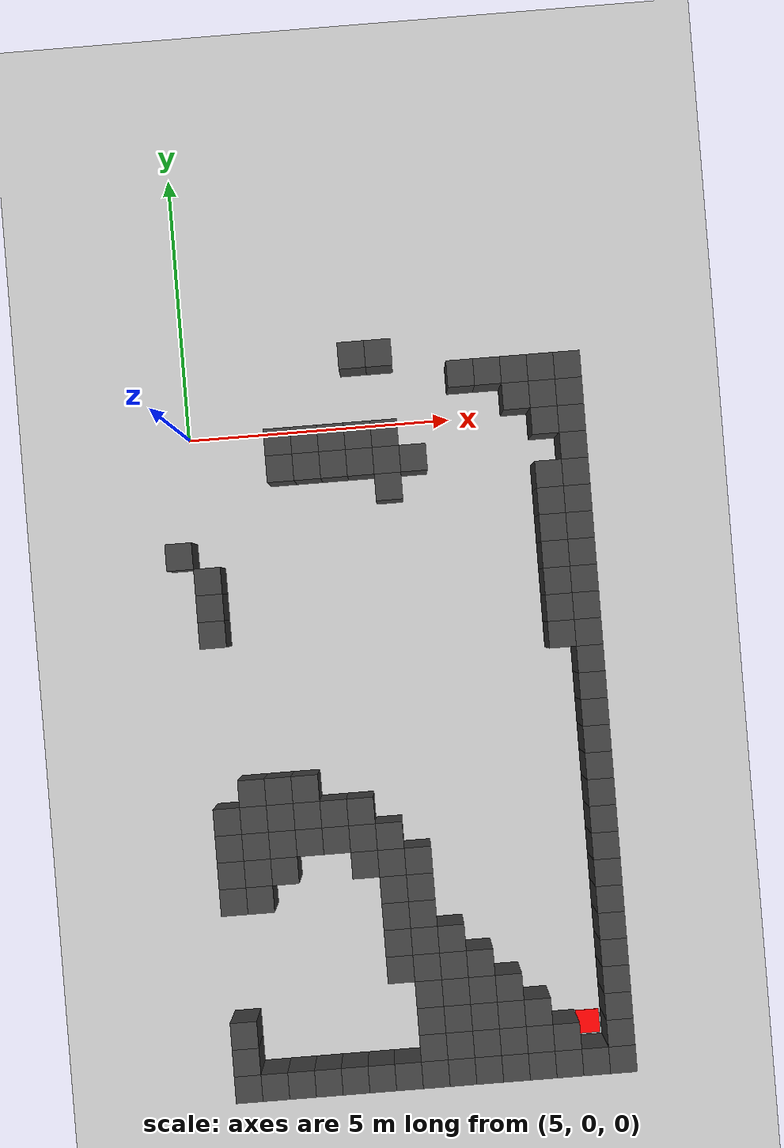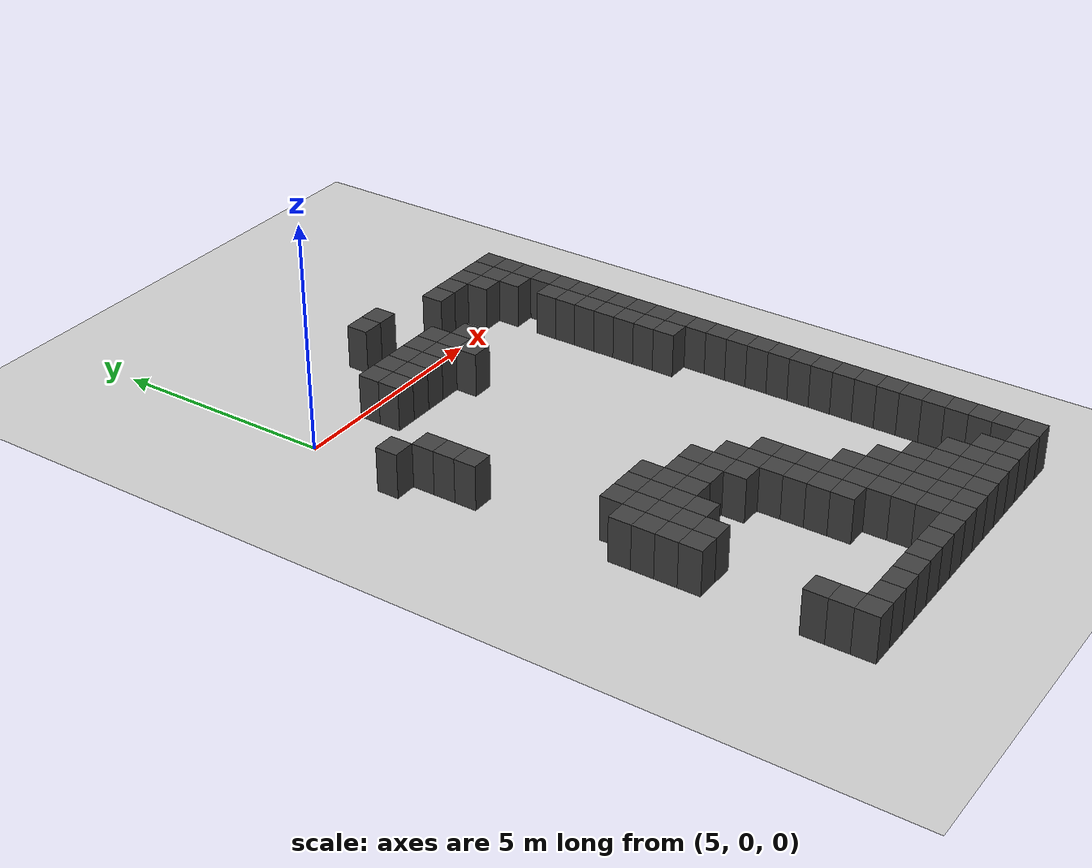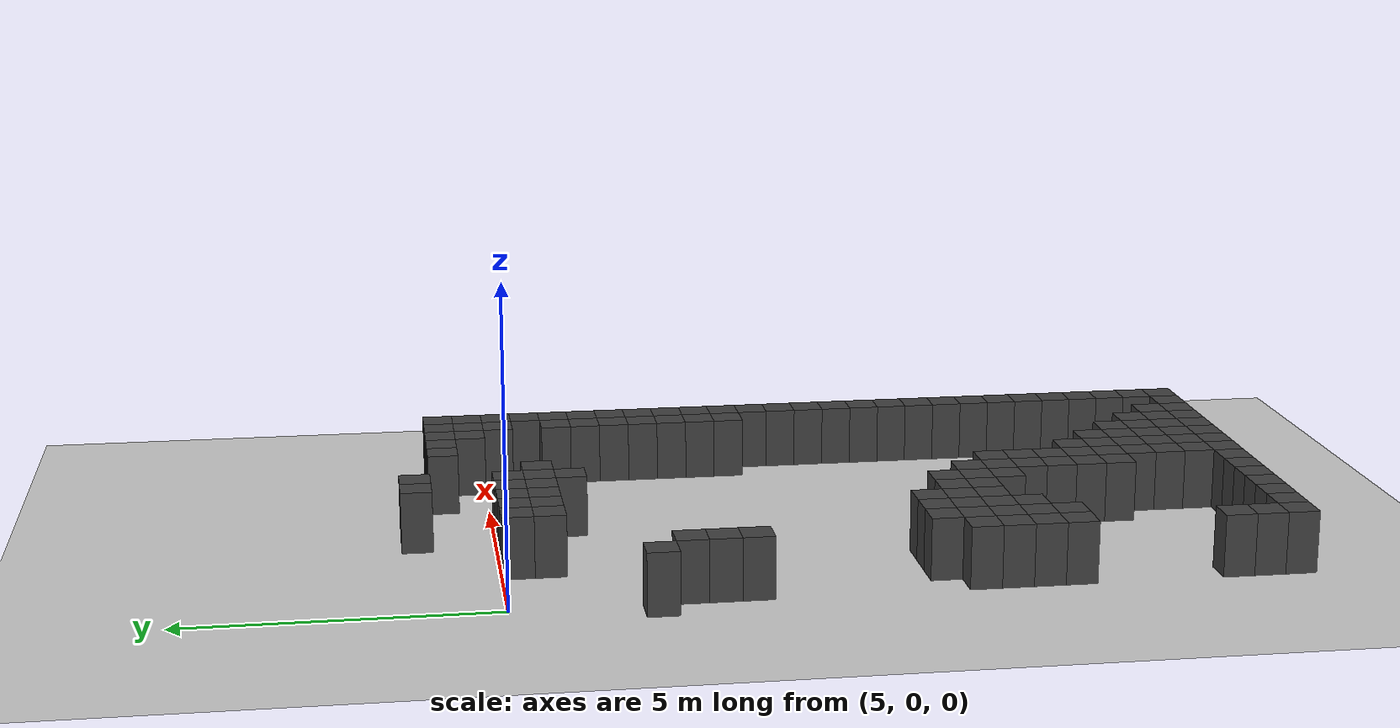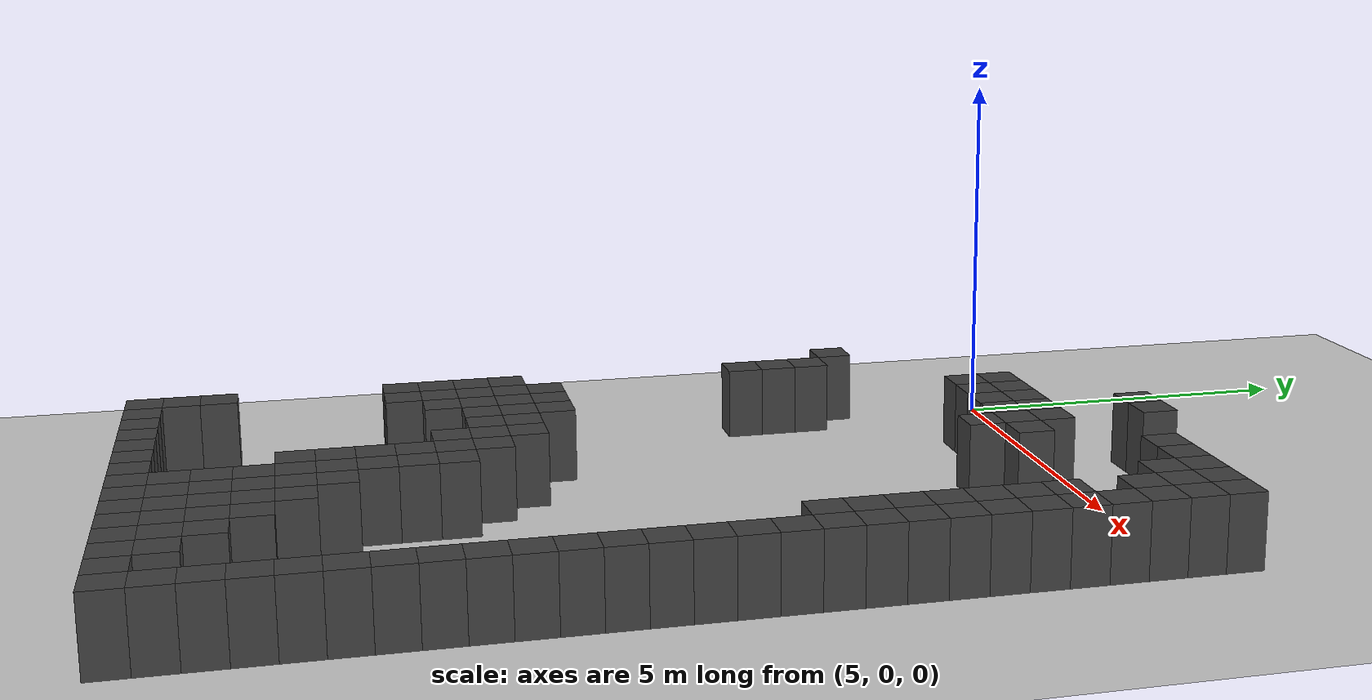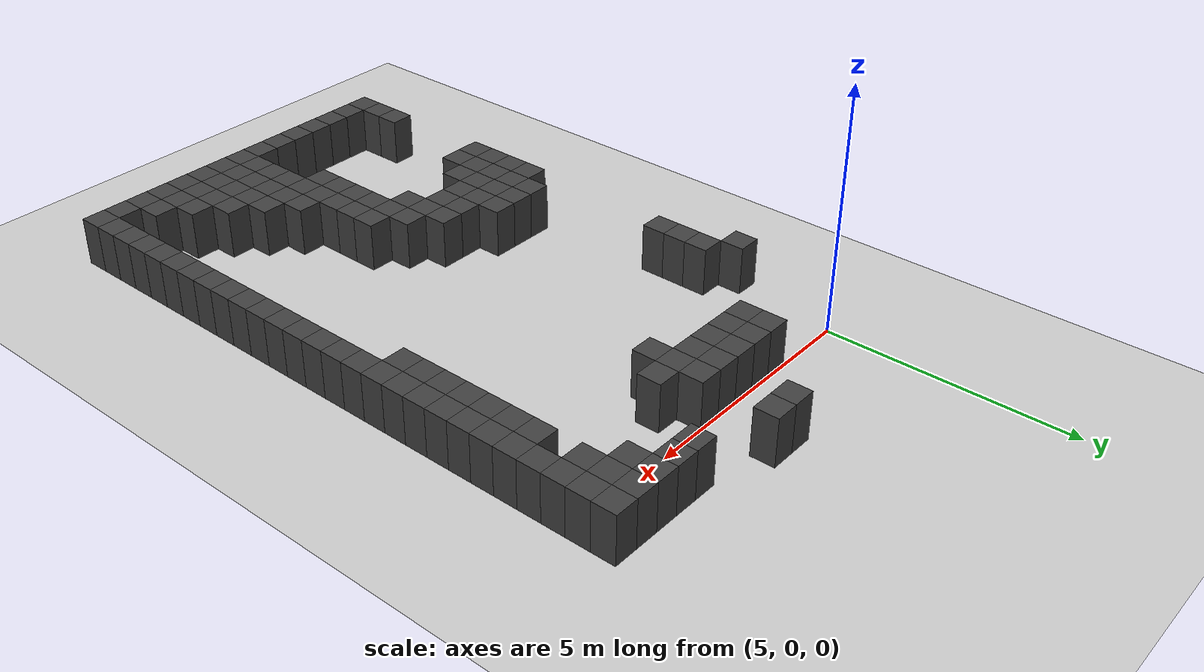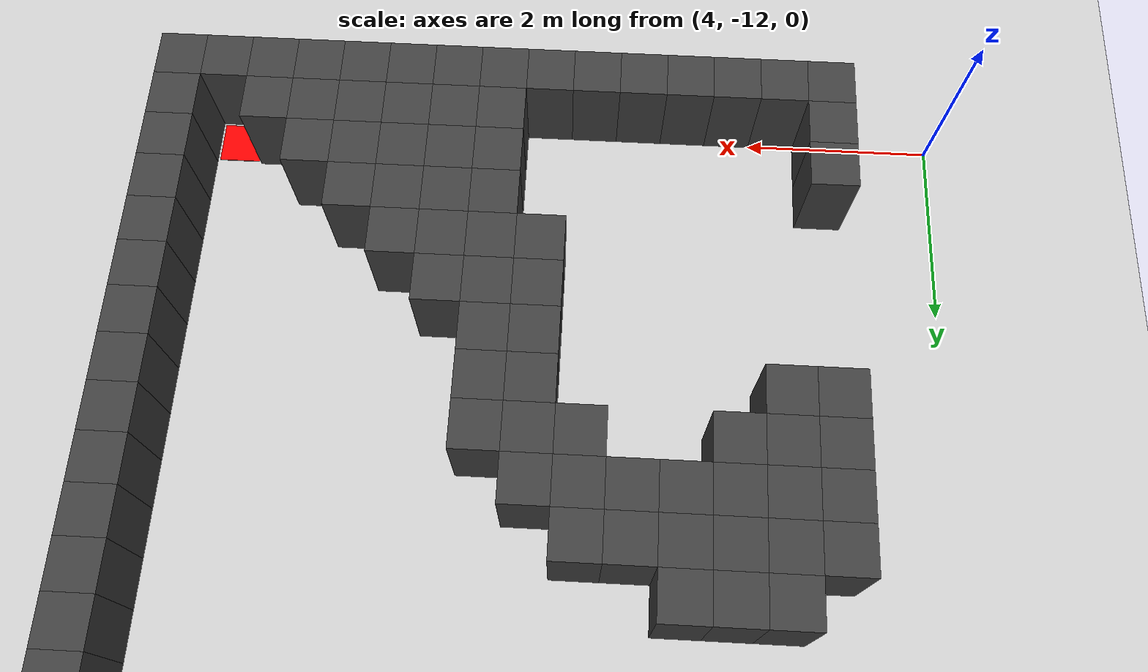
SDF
<sdf version="1.7">
 <world name="map_8658">
  <model name="ground_plane">
   <static>true</static>
   <link name="link">
    <collision name="collision">
     <geometry><plane><normal>0 0 1</normal><size>200 200</size></plane></geometry>
    </collision>
    <visual name="visual">
     <geometry><plane><normal>0 0 1</normal><size>200 200</size></plane></geometry>
     <material><ambient>0.8 0.8 0.8 1</ambient><diffuse>0.8 0.8 0.8 1</diffuse></material>
    </visual>
   </link>
  </model>
  <model name="maze_environment">
   <static>true</static>
   <link name="wall_459">
    <pose>8.250 1.250 0.500 0 0 0</pose>
    <collision name="col"><geometry><box><size>0.5 0.5 1.0</size></box></geometry></collision>
    <visual name="vis">
     <geometry><box><size>0.5 0.5 1.0</size></box></geometry>
     <material><ambient>0.15 0.15 0.15 1</ambient><diffuse>0.25 0.25 0.25 1</diffuse></material>
    </visual>
   </link>
   <link name="wall_460">
    <pose>8.750 1.250 0.500 0 0 0</pose>
    <collision name="col"><geometry><box><size>0.5 0.5 1.0</size></box></geometry></collision>
    <visual name="vis">
     <geometry><box><size>0.5 0.5 1.0</size></box></geometry>
     <material><ambient>0.15 0.15 0.15 1</ambient><diffuse>0.25 0.25 0.25 1</diffuse></material>
    </visual>
   </link>
   <link name="wall_477">
    <pose>10.250 0.750 0.500 0 0 0</pose>
    <collision name="col"><geometry><box><size>0.5 0.5 1.0</size></box></geometry></collision>
    <visual name="vis">
     <geometry><box><size>0.5 0.5 1.0</size></box></geometry>
     <material><ambient>0.15 0.15 0.15 1</ambient><diffuse>0.25 0.25 0.25 1</diffuse></material>
    </visual>
   </link>
   <link name="wall_478">
    <pose>10.750 0.750 0.500 0 0 0</pose>
    <collision name="col"><geometry><box><size>0.5 0.5 1.0</size></box></geometry></collision>
    <visual name="vis">
     <geometry><box><size>0.5 0.5 1.0</size></box></geometry>
     <material><ambient>0.15 0.15 0.15 1</ambient><diffuse>0.25 0.25 0.25 1</diffuse></material>
    </visual>
   </link>
   <link name="wall_479">
    <pose>11.250 0.750 0.500 0 0 0</pose>
    <collision name="col"><geometry><box><size>0.5 0.5 1.0</size></box></geometry></collision>
    <visual name="vis">
     <geometry><box><size>0.5 0.5 1.0</size></box></geometry>
     <material><ambient>0.15 0.15 0.15 1</ambient><diffuse>0.25 0.25 0.25 1</diffuse></material>
    </visual>
   </link>
   <link name="wall_480">
    <pose>11.750 0.750 0.500 0 0 0</pose>
    <collision name="col"><geometry><box><size>0.5 0.5 1.0</size></box></geometry></collision>
    <visual name="vis">
     <geometry><box><size>0.5 0.5 1.0</size></box></geometry>
     <material><ambient>0.15 0.15 0.15 1</ambient><diffuse>0.25 0.25 0.25 1</diffuse></material>
    </visual>
   </link>
   <link name="wall_481">
    <pose>12.250 0.750 0.500 0 0 0</pose>
    <collision name="col"><geometry><box><size>0.5 0.5 1.0</size></box></geometry></collision>
    <visual name="vis">
     <geometry><box><size>0.5 0.5 1.0</size></box></geometry>
     <material><ambient>0.15 0.15 0.15 1</ambient><diffuse>0.25 0.25 0.25 1</diffuse></material>
    </visual>
   </link>
   <link name="wall_495">
    <pose>11.250 0.250 0.500 0 0 0</pose>
    <collision name="col"><geometry><box><size>0.5 0.5 1.0</size></box></geometry></collision>
    <visual name="vis">
     <geometry><box><size>0.5 0.5 1.0</size></box></geometry>
     <material><ambient>0.15 0.15 0.15 1</ambient><diffuse>0.25 0.25 0.25 1</diffuse></material>
    </visual>
   </link>
   <link name="wall_496">
    <pose>11.750 0.250 0.500 0 0 0</pose>
    <collision name="col"><geometry><box><size>0.5 0.5 1.0</size></box></geometry></collision>
    <visual name="vis">
     <geometry><box><size>0.5 0.5 1.0</size></box></geometry>
     <material><ambient>0.15 0.15 0.15 1</ambient><diffuse>0.25 0.25 0.25 1</diffuse></material>
    </visual>
   </link>
   <link name="wall_497">
    <pose>12.250 0.250 0.500 0 0 0</pose>
    <collision name="col"><geometry><box><size>0.5 0.5 1.0</size></box></geometry></collision>
    <visual name="vis">
     <geometry><box><size>0.5 0.5 1.0</size></box></geometry>
     <material><ambient>0.15 0.15 0.15 1</ambient><diffuse>0.25 0.25 0.25 1</diffuse></material>
    </visual>
   </link>
   <link name="wall_513">
    <pose>6.750 -0.250 0.500 0 0 0</pose>
    <collision name="col"><geometry><box><size>0.5 0.5 1.0</size></box></geometry></collision>
    <visual name="vis">
     <geometry><box><size>0.5 0.5 1.0</size></box></geometry>
     <material><ambient>0.15 0.15 0.15 1</ambient><diffuse>0.25 0.25 0.25 1</diffuse></material>
    </visual>
   </link>
   <link name="wall_514">
    <pose>7.250 -0.250 0.500 0 0 0</pose>
    <collision name="col"><geometry><box><size>0.5 0.5 1.0</size></box></geometry></collision>
    <visual name="vis">
     <geometry><box><size>0.5 0.5 1.0</size></box></geometry>
     <material><ambient>0.15 0.15 0.15 1</ambient><diffuse>0.25 0.25 0.25 1</diffuse></material>
    </visual>
   </link>
   <link name="wall_515">
    <pose>7.750 -0.250 0.500 0 0 0</pose>
    <collision name="col"><geometry><box><size>0.5 0.5 1.0</size></box></geometry></collision>
    <visual name="vis">
     <geometry><box><size>0.5 0.5 1.0</size></box></geometry>
     <material><ambient>0.15 0.15 0.15 1</ambient><diffuse>0.25 0.25 0.25 1</diffuse></material>
    </visual>
   </link>
   <link name="wall_516">
    <pose>8.250 -0.250 0.500 0 0 0</pose>
    <collision name="col"><geometry><box><size>0.5 0.5 1.0</size></box></geometry></collision>
    <visual name="vis">
     <geometry><box><size>0.5 0.5 1.0</size></box></geometry>
     <material><ambient>0.15 0.15 0.15 1</ambient><diffuse>0.25 0.25 0.25 1</diffuse></material>
    </visual>
   </link>
   <link name="wall_517">
    <pose>8.750 -0.250 0.500 0 0 0</pose>
    <collision name="col"><geometry><box><size>0.5 0.5 1.0</size></box></geometry></collision>
    <visual name="vis">
     <geometry><box><size>0.5 0.5 1.0</size></box></geometry>
     <material><ambient>0.15 0.15 0.15 1</ambient><diffuse>0.25 0.25 0.25 1</diffuse></material>
    </visual>
   </link>
   <link name="wall_518">
    <pose>11.750 -0.250 0.500 0 0 0</pose>
    <collision name="col"><geometry><box><size>0.5 0.5 1.0</size></box></geometry></collision>
    <visual name="vis">
     <geometry><box><size>0.5 0.5 1.0</size></box></geometry>
     <material><ambient>0.15 0.15 0.15 1</ambient><diffuse>0.25 0.25 0.25 1</diffuse></material>
    </visual>
   </link>
   <link name="wall_519">
    <pose>12.250 -0.250 0.500 0 0 0</pose>
    <collision name="col"><geometry><box><size>0.5 0.5 1.0</size></box></geometry></collision>
    <visual name="vis">
     <geometry><box><size>0.5 0.5 1.0</size></box></geometry>
     <material><ambient>0.15 0.15 0.15 1</ambient><diffuse>0.25 0.25 0.25 1</diffuse></material>
    </visual>
   </link>
   <link name="wall_534">
    <pose>6.750 -0.750 0.500 0 0 0</pose>
    <collision name="col"><geometry><box><size>0.5 0.5 1.0</size></box></geometry></collision>
    <visual name="vis">
     <geometry><box><size>0.5 0.5 1.0</size></box></geometry>
     <material><ambient>0.15 0.15 0.15 1</ambient><diffuse>0.25 0.25 0.25 1</diffuse></material>
    </visual>
   </link>
   <link name="wall_535">
    <pose>7.250 -0.750 0.500 0 0 0</pose>
    <collision name="col"><geometry><box><size>0.5 0.5 1.0</size></box></geometry></collision>
    <visual name="vis">
     <geometry><box><size>0.5 0.5 1.0</size></box></geometry>
     <material><ambient>0.15 0.15 0.15 1</ambient><diffuse>0.25 0.25 0.25 1</diffuse></material>
    </visual>
   </link>
   <link name="wall_536">
    <pose>7.750 -0.750 0.500 0 0 0</pose>
    <collision name="col"><geometry><box><size>0.5 0.5 1.0</size></box></geometry></collision>
    <visual name="vis">
     <geometry><box><size>0.5 0.5 1.0</size></box></geometry>
     <material><ambient>0.15 0.15 0.15 1</ambient><diffuse>0.25 0.25 0.25 1</diffuse></material>
    </visual>
   </link>
   <link name="wall_537">
    <pose>8.250 -0.750 0.500 0 0 0</pose>
    <collision name="col"><geometry><box><size>0.5 0.5 1.0</size></box></geometry></collision>
    <visual name="vis">
     <geometry><box><size>0.5 0.5 1.0</size></box></geometry>
     <material><ambient>0.15 0.15 0.15 1</ambient><diffuse>0.25 0.25 0.25 1</diffuse></material>
    </visual>
   </link>
   <link name="wall_538">
    <pose>8.750 -0.750 0.500 0 0 0</pose>
    <collision name="col"><geometry><box><size>0.5 0.5 1.0</size></box></geometry></collision>
    <visual name="vis">
     <geometry><box><size>0.5 0.5 1.0</size></box></geometry>
     <material><ambient>0.15 0.15 0.15 1</ambient><diffuse>0.25 0.25 0.25 1</diffuse></material>
    </visual>
   </link>
   <link name="wall_539">
    <pose>9.250 -0.750 0.500 0 0 0</pose>
    <collision name="col"><geometry><box><size>0.5 0.5 1.0</size></box></geometry></collision>
    <visual name="vis">
     <geometry><box><size>0.5 0.5 1.0</size></box></geometry>
     <material><ambient>0.15 0.15 0.15 1</ambient><diffuse>0.25 0.25 0.25 1</diffuse></material>
    </visual>
   </link>
   <link name="wall_540">
    <pose>12.250 -0.750 0.500 0 0 0</pose>
    <collision name="col"><geometry><box><size>0.5 0.5 1.0</size></box></geometry></collision>
    <visual name="vis">
     <geometry><box><size>0.5 0.5 1.0</size></box></geometry>
     <material><ambient>0.15 0.15 0.15 1</ambient><diffuse>0.25 0.25 0.25 1</diffuse></material>
    </visual>
   </link>
   <link name="wall_554">
    <pose>8.750 -1.250 0.500 0 0 0</pose>
    <collision name="col"><geometry><box><size>0.5 0.5 1.0</size></box></geometry></collision>
    <visual name="vis">
     <geometry><box><size>0.5 0.5 1.0</size></box></geometry>
     <material><ambient>0.15 0.15 0.15 1</ambient><diffuse>0.25 0.25 0.25 1</diffuse></material>
    </visual>
   </link>
   <link name="wall_555">
    <pose>11.750 -1.250 0.500 0 0 0</pose>
    <collision name="col"><geometry><box><size>0.5 0.5 1.0</size></box></geometry></collision>
    <visual name="vis">
     <geometry><box><size>0.5 0.5 1.0</size></box></geometry>
     <material><ambient>0.15 0.15 0.15 1</ambient><diffuse>0.25 0.25 0.25 1</diffuse></material>
    </visual>
   </link>
   <link name="wall_556">
    <pose>12.250 -1.250 0.500 0 0 0</pose>
    <collision name="col"><geometry><box><size>0.5 0.5 1.0</size></box></geometry></collision>
    <visual name="vis">
     <geometry><box><size>0.5 0.5 1.0</size></box></geometry>
     <material><ambient>0.15 0.15 0.15 1</ambient><diffuse>0.25 0.25 0.25 1</diffuse></material>
    </visual>
   </link>
   <link name="wall_571">
    <pose>11.750 -1.750 0.500 0 0 0</pose>
    <collision name="col"><geometry><box><size>0.5 0.5 1.0</size></box></geometry></collision>
    <visual name="vis">
     <geometry><box><size>0.5 0.5 1.0</size></box></geometry>
     <material><ambient>0.15 0.15 0.15 1</ambient><diffuse>0.25 0.25 0.25 1</diffuse></material>
    </visual>
   </link>
   <link name="wall_572">
    <pose>12.250 -1.750 0.500 0 0 0</pose>
    <collision name="col"><geometry><box><size>0.5 0.5 1.0</size></box></geometry></collision>
    <visual name="vis">
     <geometry><box><size>0.5 0.5 1.0</size></box></geometry>
     <material><ambient>0.15 0.15 0.15 1</ambient><diffuse>0.25 0.25 0.25 1</diffuse></material>
    </visual>
   </link>
   <link name="wall_591">
    <pose>4.750 -2.250 0.500 0 0 0</pose>
    <collision name="col"><geometry><box><size>0.5 0.5 1.0</size></box></geometry></collision>
    <visual name="vis">
     <geometry><box><size>0.5 0.5 1.0</size></box></geometry>
     <material><ambient>0.15 0.15 0.15 1</ambient><diffuse>0.25 0.25 0.25 1</diffuse></material>
    </visual>
   </link>
   <link name="wall_592">
    <pose>11.750 -2.250 0.500 0 0 0</pose>
    <collision name="col"><geometry><box><size>0.5 0.5 1.0</size></box></geometry></collision>
    <visual name="vis">
     <geometry><box><size>0.5 0.5 1.0</size></box></geometry>
     <material><ambient>0.15 0.15 0.15 1</ambient><diffuse>0.25 0.25 0.25 1</diffuse></material>
    </visual>
   </link>
   <link name="wall_593">
    <pose>12.250 -2.250 0.500 0 0 0</pose>
    <collision name="col"><geometry><box><size>0.5 0.5 1.0</size></box></geometry></collision>
    <visual name="vis">
     <geometry><box><size>0.5 0.5 1.0</size></box></geometry>
     <material><ambient>0.15 0.15 0.15 1</ambient><diffuse>0.25 0.25 0.25 1</diffuse></material>
    </visual>
   </link>
   <link name="wall_610">
    <pose>5.250 -2.750 0.500 0 0 0</pose>
    <collision name="col"><geometry><box><size>0.5 0.5 1.0</size></box></geometry></collision>
    <visual name="vis">
     <geometry><box><size>0.5 0.5 1.0</size></box></geometry>
     <material><ambient>0.15 0.15 0.15 1</ambient><diffuse>0.25 0.25 0.25 1</diffuse></material>
    </visual>
   </link>
   <link name="wall_611">
    <pose>11.750 -2.750 0.500 0 0 0</pose>
    <collision name="col"><geometry><box><size>0.5 0.5 1.0</size></box></geometry></collision>
    <visual name="vis">
     <geometry><box><size>0.5 0.5 1.0</size></box></geometry>
     <material><ambient>0.15 0.15 0.15 1</ambient><diffuse>0.25 0.25 0.25 1</diffuse></material>
    </visual>
   </link>
   <link name="wall_612">
    <pose>12.250 -2.750 0.500 0 0 0</pose>
    <collision name="col"><geometry><box><size>0.5 0.5 1.0</size></box></geometry></collision>
    <visual name="vis">
     <geometry><box><size>0.5 0.5 1.0</size></box></geometry>
     <material><ambient>0.15 0.15 0.15 1</ambient><diffuse>0.25 0.25 0.25 1</diffuse></material>
    </visual>
   </link>
   <link name="wall_628">
    <pose>5.250 -3.250 0.500 0 0 0</pose>
    <collision name="col"><geometry><box><size>0.5 0.5 1.0</size></box></geometry></collision>
    <visual name="vis">
     <geometry><box><size>0.5 0.5 1.0</size></box></geometry>
     <material><ambient>0.15 0.15 0.15 1</ambient><diffuse>0.25 0.25 0.25 1</diffuse></material>
    </visual>
   </link>
   <link name="wall_629">
    <pose>11.750 -3.250 0.500 0 0 0</pose>
    <collision name="col"><geometry><box><size>0.5 0.5 1.0</size></box></geometry></collision>
    <visual name="vis">
     <geometry><box><size>0.5 0.5 1.0</size></box></geometry>
     <material><ambient>0.15 0.15 0.15 1</ambient><diffuse>0.25 0.25 0.25 1</diffuse></material>
    </visual>
   </link>
   <link name="wall_630">
    <pose>12.250 -3.250 0.500 0 0 0</pose>
    <collision name="col"><geometry><box><size>0.5 0.5 1.0</size></box></geometry></collision>
    <visual name="vis">
     <geometry><box><size>0.5 0.5 1.0</size></box></geometry>
     <material><ambient>0.15 0.15 0.15 1</ambient><diffuse>0.25 0.25 0.25 1</diffuse></material>
    </visual>
   </link>
   <link name="wall_646">
    <pose>5.250 -3.750 0.500 0 0 0</pose>
    <collision name="col"><geometry><box><size>0.5 0.5 1.0</size></box></geometry></collision>
    <visual name="vis">
     <geometry><box><size>0.5 0.5 1.0</size></box></geometry>
     <material><ambient>0.15 0.15 0.15 1</ambient><diffuse>0.25 0.25 0.25 1</diffuse></material>
    </visual>
   </link>
   <link name="wall_647">
    <pose>11.750 -3.750 0.500 0 0 0</pose>
    <collision name="col"><geometry><box><size>0.5 0.5 1.0</size></box></geometry></collision>
    <visual name="vis">
     <geometry><box><size>0.5 0.5 1.0</size></box></geometry>
     <material><ambient>0.15 0.15 0.15 1</ambient><diffuse>0.25 0.25 0.25 1</diffuse></material>
    </visual>
   </link>
   <link name="wall_648">
    <pose>12.250 -3.750 0.500 0 0 0</pose>
    <collision name="col"><geometry><box><size>0.5 0.5 1.0</size></box></geometry></collision>
    <visual name="vis">
     <geometry><box><size>0.5 0.5 1.0</size></box></geometry>
     <material><ambient>0.15 0.15 0.15 1</ambient><diffuse>0.25 0.25 0.25 1</diffuse></material>
    </visual>
   </link>
   <link name="wall_664">
    <pose>11.750 -4.250 0.500 0 0 0</pose>
    <collision name="col"><geometry><box><size>0.5 0.5 1.0</size></box></geometry></collision>
    <visual name="vis">
     <geometry><box><size>0.5 0.5 1.0</size></box></geometry>
     <material><ambient>0.15 0.15 0.15 1</ambient><diffuse>0.25 0.25 0.25 1</diffuse></material>
    </visual>
   </link>
   <link name="wall_665">
    <pose>12.250 -4.250 0.500 0 0 0</pose>
    <collision name="col"><geometry><box><size>0.5 0.5 1.0</size></box></geometry></collision>
    <visual name="vis">
     <geometry><box><size>0.5 0.5 1.0</size></box></geometry>
     <material><ambient>0.15 0.15 0.15 1</ambient><diffuse>0.25 0.25 0.25 1</diffuse></material>
    </visual>
   </link>
   <link name="wall_675">
    <pose>12.250 -4.750 0.500 0 0 0</pose>
    <collision name="col"><geometry><box><size>0.5 0.5 1.0</size></box></geometry></collision>
    <visual name="vis">
     <geometry><box><size>0.5 0.5 1.0</size></box></geometry>
     <material><ambient>0.15 0.15 0.15 1</ambient><diffuse>0.25 0.25 0.25 1</diffuse></material>
    </visual>
   </link>
   <link name="wall_682">
    <pose>12.250 -5.250 0.500 0 0 0</pose>
    <collision name="col"><geometry><box><size>0.5 0.5 1.0</size></box></geometry></collision>
    <visual name="vis">
     <geometry><box><size>0.5 0.5 1.0</size></box></geometry>
     <material><ambient>0.15 0.15 0.15 1</ambient><diffuse>0.25 0.25 0.25 1</diffuse></material>
    </visual>
   </link>
   <link name="wall_688">
    <pose>12.250 -5.750 0.500 0 0 0</pose>
    <collision name="col"><geometry><box><size>0.5 0.5 1.0</size></box></geometry></collision>
    <visual name="vis">
     <geometry><box><size>0.5 0.5 1.0</size></box></geometry>
     <material><ambient>0.15 0.15 0.15 1</ambient><diffuse>0.25 0.25 0.25 1</diffuse></material>
    </visual>
   </link>
   <link name="wall_693">
    <pose>12.250 -6.250 0.500 0 0 0</pose>
    <collision name="col"><geometry><box><size>0.5 0.5 1.0</size></box></geometry></collision>
    <visual name="vis">
     <geometry><box><size>0.5 0.5 1.0</size></box></geometry>
     <material><ambient>0.15 0.15 0.15 1</ambient><diffuse>0.25 0.25 0.25 1</diffuse></material>
    </visual>
   </link>
   <link name="wall_695">
    <pose>5.750 -6.750 0.500 0 0 0</pose>
    <collision name="col"><geometry><box><size>0.5 0.5 1.0</size></box></geometry></collision>
    <visual name="vis">
     <geometry><box><size>0.5 0.5 1.0</size></box></geometry>
     <material><ambient>0.15 0.15 0.15 1</ambient><diffuse>0.25 0.25 0.25 1</diffuse></material>
    </visual>
   </link>
   <link name="wall_696">
    <pose>6.250 -6.750 0.500 0 0 0</pose>
    <collision name="col"><geometry><box><size>0.5 0.5 1.0</size></box></geometry></collision>
    <visual name="vis">
     <geometry><box><size>0.5 0.5 1.0</size></box></geometry>
     <material><ambient>0.15 0.15 0.15 1</ambient><diffuse>0.25 0.25 0.25 1</diffuse></material>
    </visual>
   </link>
   <link name="wall_697">
    <pose>6.750 -6.750 0.500 0 0 0</pose>
    <collision name="col"><geometry><box><size>0.5 0.5 1.0</size></box></geometry></collision>
    <visual name="vis">
     <geometry><box><size>0.5 0.5 1.0</size></box></geometry>
     <material><ambient>0.15 0.15 0.15 1</ambient><diffuse>0.25 0.25 0.25 1</diffuse></material>
    </visual>
   </link>
   <link name="wall_698">
    <pose>12.250 -6.750 0.500 0 0 0</pose>
    <collision name="col"><geometry><box><size>0.5 0.5 1.0</size></box></geometry></collision>
    <visual name="vis">
     <geometry><box><size>0.5 0.5 1.0</size></box></geometry>
     <material><ambient>0.15 0.15 0.15 1</ambient><diffuse>0.25 0.25 0.25 1</diffuse></material>
    </visual>
   </link>
   <link name="wall_702">
    <pose>5.250 -7.250 0.500 0 0 0</pose>
    <collision name="col"><geometry><box><size>0.5 0.5 1.0</size></box></geometry></collision>
    <visual name="vis">
     <geometry><box><size>0.5 0.5 1.0</size></box></geometry>
     <material><ambient>0.15 0.15 0.15 1</ambient><diffuse>0.25 0.25 0.25 1</diffuse></material>
    </visual>
   </link>
   <link name="wall_703">
    <pose>5.750 -7.250 0.500 0 0 0</pose>
    <collision name="col"><geometry><box><size>0.5 0.5 1.0</size></box></geometry></collision>
    <visual name="vis">
     <geometry><box><size>0.5 0.5 1.0</size></box></geometry>
     <material><ambient>0.15 0.15 0.15 1</ambient><diffuse>0.25 0.25 0.25 1</diffuse></material>
    </visual>
   </link>
   <link name="wall_704">
    <pose>6.250 -7.250 0.500 0 0 0</pose>
    <collision name="col"><geometry><box><size>0.5 0.5 1.0</size></box></geometry></collision>
    <visual name="vis">
     <geometry><box><size>0.5 0.5 1.0</size></box></geometry>
     <material><ambient>0.15 0.15 0.15 1</ambient><diffuse>0.25 0.25 0.25 1</diffuse></material>
    </visual>
   </link>
   <link name="wall_705">
    <pose>6.750 -7.250 0.500 0 0 0</pose>
    <collision name="col"><geometry><box><size>0.5 0.5 1.0</size></box></geometry></collision>
    <visual name="vis">
     <geometry><box><size>0.5 0.5 1.0</size></box></geometry>
     <material><ambient>0.15 0.15 0.15 1</ambient><diffuse>0.25 0.25 0.25 1</diffuse></material>
    </visual>
   </link>
   <link name="wall_706">
    <pose>7.250 -7.250 0.500 0 0 0</pose>
    <collision name="col"><geometry><box><size>0.5 0.5 1.0</size></box></geometry></collision>
    <visual name="vis">
     <geometry><box><size>0.5 0.5 1.0</size></box></geometry>
     <material><ambient>0.15 0.15 0.15 1</ambient><diffuse>0.25 0.25 0.25 1</diffuse></material>
    </visual>
   </link>
   <link name="wall_707">
    <pose>7.750 -7.250 0.500 0 0 0</pose>
    <collision name="col"><geometry><box><size>0.5 0.5 1.0</size></box></geometry></collision>
    <visual name="vis">
     <geometry><box><size>0.5 0.5 1.0</size></box></geometry>
     <material><ambient>0.15 0.15 0.15 1</ambient><diffuse>0.25 0.25 0.25 1</diffuse></material>
    </visual>
   </link>
   <link name="wall_708">
    <pose>12.250 -7.250 0.500 0 0 0</pose>
    <collision name="col"><geometry><box><size>0.5 0.5 1.0</size></box></geometry></collision>
    <visual name="vis">
     <geometry><box><size>0.5 0.5 1.0</size></box></geometry>
     <material><ambient>0.15 0.15 0.15 1</ambient><diffuse>0.25 0.25 0.25 1</diffuse></material>
    </visual>
   </link>
   <link name="wall_715">
    <pose>5.250 -7.750 0.500 0 0 0</pose>
    <collision name="col"><geometry><box><size>0.5 0.5 1.0</size></box></geometry></collision>
    <visual name="vis">
     <geometry><box><size>0.5 0.5 1.0</size></box></geometry>
     <material><ambient>0.15 0.15 0.15 1</ambient><diffuse>0.25 0.25 0.25 1</diffuse></material>
    </visual>
   </link>
   <link name="wall_716">
    <pose>5.750 -7.750 0.500 0 0 0</pose>
    <collision name="col"><geometry><box><size>0.5 0.5 1.0</size></box></geometry></collision>
    <visual name="vis">
     <geometry><box><size>0.5 0.5 1.0</size></box></geometry>
     <material><ambient>0.15 0.15 0.15 1</ambient><diffuse>0.25 0.25 0.25 1</diffuse></material>
    </visual>
   </link>
   <link name="wall_717">
    <pose>6.250 -7.750 0.500 0 0 0</pose>
    <collision name="col"><geometry><box><size>0.5 0.5 1.0</size></box></geometry></collision>
    <visual name="vis">
     <geometry><box><size>0.5 0.5 1.0</size></box></geometry>
     <material><ambient>0.15 0.15 0.15 1</ambient><diffuse>0.25 0.25 0.25 1</diffuse></material>
    </visual>
   </link>
   <link name="wall_718">
    <pose>6.750 -7.750 0.500 0 0 0</pose>
    <collision name="col"><geometry><box><size>0.5 0.5 1.0</size></box></geometry></collision>
    <visual name="vis">
     <geometry><box><size>0.5 0.5 1.0</size></box></geometry>
     <material><ambient>0.15 0.15 0.15 1</ambient><diffuse>0.25 0.25 0.25 1</diffuse></material>
    </visual>
   </link>
   <link name="wall_719">
    <pose>7.250 -7.750 0.500 0 0 0</pose>
    <collision name="col"><geometry><box><size>0.5 0.5 1.0</size></box></geometry></collision>
    <visual name="vis">
     <geometry><box><size>0.5 0.5 1.0</size></box></geometry>
     <material><ambient>0.15 0.15 0.15 1</ambient><diffuse>0.25 0.25 0.25 1</diffuse></material>
    </visual>
   </link>
   <link name="wall_720">
    <pose>7.750 -7.750 0.500 0 0 0</pose>
    <collision name="col"><geometry><box><size>0.5 0.5 1.0</size></box></geometry></collision>
    <visual name="vis">
     <geometry><box><size>0.5 0.5 1.0</size></box></geometry>
     <material><ambient>0.15 0.15 0.15 1</ambient><diffuse>0.25 0.25 0.25 1</diffuse></material>
    </visual>
   </link>
   <link name="wall_721">
    <pose>8.250 -7.750 0.500 0 0 0</pose>
    <collision name="col"><geometry><box><size>0.5 0.5 1.0</size></box></geometry></collision>
    <visual name="vis">
     <geometry><box><size>0.5 0.5 1.0</size></box></geometry>
     <material><ambient>0.15 0.15 0.15 1</ambient><diffuse>0.25 0.25 0.25 1</diffuse></material>
    </visual>
   </link>
   <link name="wall_722">
    <pose>12.250 -7.750 0.500 0 0 0</pose>
    <collision name="col"><geometry><box><size>0.5 0.5 1.0</size></box></geometry></collision>
    <visual name="vis">
     <geometry><box><size>0.5 0.5 1.0</size></box></geometry>
     <material><ambient>0.15 0.15 0.15 1</ambient><diffuse>0.25 0.25 0.25 1</diffuse></material>
    </visual>
   </link>
   <link name="wall_734">
    <pose>5.250 -8.250 0.500 0 0 0</pose>
    <collision name="col"><geometry><box><size>0.5 0.5 1.0</size></box></geometry></collision>
    <visual name="vis">
     <geometry><box><size>0.5 0.5 1.0</size></box></geometry>
     <material><ambient>0.15 0.15 0.15 1</ambient><diffuse>0.25 0.25 0.25 1</diffuse></material>
    </visual>
   </link>
   <link name="wall_735">
    <pose>5.750 -8.250 0.500 0 0 0</pose>
    <collision name="col"><geometry><box><size>0.5 0.5 1.0</size></box></geometry></collision>
    <visual name="vis">
     <geometry><box><size>0.5 0.5 1.0</size></box></geometry>
     <material><ambient>0.15 0.15 0.15 1</ambient><diffuse>0.25 0.25 0.25 1</diffuse></material>
    </visual>
   </link>
   <link name="wall_736">
    <pose>6.250 -8.250 0.500 0 0 0</pose>
    <collision name="col"><geometry><box><size>0.5 0.5 1.0</size></box></geometry></collision>
    <visual name="vis">
     <geometry><box><size>0.5 0.5 1.0</size></box></geometry>
     <material><ambient>0.15 0.15 0.15 1</ambient><diffuse>0.25 0.25 0.25 1</diffuse></material>
    </visual>
   </link>
   <link name="wall_737">
    <pose>7.750 -8.250 0.500 0 0 0</pose>
    <collision name="col"><geometry><box><size>0.5 0.5 1.0</size></box></geometry></collision>
    <visual name="vis">
     <geometry><box><size>0.5 0.5 1.0</size></box></geometry>
     <material><ambient>0.15 0.15 0.15 1</ambient><diffuse>0.25 0.25 0.25 1</diffuse></material>
    </visual>
   </link>
   <link name="wall_738">
    <pose>8.250 -8.250 0.500 0 0 0</pose>
    <collision name="col"><geometry><box><size>0.5 0.5 1.0</size></box></geometry></collision>
    <visual name="vis">
     <geometry><box><size>0.5 0.5 1.0</size></box></geometry>
     <material><ambient>0.15 0.15 0.15 1</ambient><diffuse>0.25 0.25 0.25 1</diffuse></material>
    </visual>
   </link>
   <link name="wall_739">
    <pose>8.750 -8.250 0.500 0 0 0</pose>
    <collision name="col"><geometry><box><size>0.5 0.5 1.0</size></box></geometry></collision>
    <visual name="vis">
     <geometry><box><size>0.5 0.5 1.0</size></box></geometry>
     <material><ambient>0.15 0.15 0.15 1</ambient><diffuse>0.25 0.25 0.25 1</diffuse></material>
    </visual>
   </link>
   <link name="wall_740">
    <pose>12.250 -8.250 0.500 0 0 0</pose>
    <collision name="col"><geometry><box><size>0.5 0.5 1.0</size></box></geometry></collision>
    <visual name="vis">
     <geometry><box><size>0.5 0.5 1.0</size></box></geometry>
     <material><ambient>0.15 0.15 0.15 1</ambient><diffuse>0.25 0.25 0.25 1</diffuse></material>
    </visual>
   </link>
   <link name="wall_756">
    <pose>5.250 -8.750 0.500 0 0 0</pose>
    <collision name="col"><geometry><box><size>0.5 0.5 1.0</size></box></geometry></collision>
    <visual name="vis">
     <geometry><box><size>0.5 0.5 1.0</size></box></geometry>
     <material><ambient>0.15 0.15 0.15 1</ambient><diffuse>0.25 0.25 0.25 1</diffuse></material>
    </visual>
   </link>
   <link name="wall_757">
    <pose>5.750 -8.750 0.500 0 0 0</pose>
    <collision name="col"><geometry><box><size>0.5 0.5 1.0</size></box></geometry></collision>
    <visual name="vis">
     <geometry><box><size>0.5 0.5 1.0</size></box></geometry>
     <material><ambient>0.15 0.15 0.15 1</ambient><diffuse>0.25 0.25 0.25 1</diffuse></material>
    </visual>
   </link>
   <link name="wall_758">
    <pose>8.250 -8.750 0.500 0 0 0</pose>
    <collision name="col"><geometry><box><size>0.5 0.5 1.0</size></box></geometry></collision>
    <visual name="vis">
     <geometry><box><size>0.5 0.5 1.0</size></box></geometry>
     <material><ambient>0.15 0.15 0.15 1</ambient><diffuse>0.25 0.25 0.25 1</diffuse></material>
    </visual>
   </link>
   <link name="wall_759">
    <pose>8.750 -8.750 0.500 0 0 0</pose>
    <collision name="col"><geometry><box><size>0.5 0.5 1.0</size></box></geometry></collision>
    <visual name="vis">
     <geometry><box><size>0.5 0.5 1.0</size></box></geometry>
     <material><ambient>0.15 0.15 0.15 1</ambient><diffuse>0.25 0.25 0.25 1</diffuse></material>
    </visual>
   </link>
   <link name="wall_760">
    <pose>12.250 -8.750 0.500 0 0 0</pose>
    <collision name="col"><geometry><box><size>0.5 0.5 1.0</size></box></geometry></collision>
    <visual name="vis">
     <geometry><box><size>0.5 0.5 1.0</size></box></geometry>
     <material><ambient>0.15 0.15 0.15 1</ambient><diffuse>0.25 0.25 0.25 1</diffuse></material>
    </visual>
   </link>
   <link name="wall_782">
    <pose>8.250 -9.250 0.500 0 0 0</pose>
    <collision name="col"><geometry><box><size>0.5 0.5 1.0</size></box></geometry></collision>
    <visual name="vis">
     <geometry><box><size>0.5 0.5 1.0</size></box></geometry>
     <material><ambient>0.15 0.15 0.15 1</ambient><diffuse>0.25 0.25 0.25 1</diffuse></material>
    </visual>
   </link>
   <link name="wall_783">
    <pose>8.750 -9.250 0.500 0 0 0</pose>
    <collision name="col"><geometry><box><size>0.5 0.5 1.0</size></box></geometry></collision>
    <visual name="vis">
     <geometry><box><size>0.5 0.5 1.0</size></box></geometry>
     <material><ambient>0.15 0.15 0.15 1</ambient><diffuse>0.25 0.25 0.25 1</diffuse></material>
    </visual>
   </link>
   <link name="wall_784">
    <pose>12.250 -9.250 0.500 0 0 0</pose>
    <collision name="col"><geometry><box><size>0.5 0.5 1.0</size></box></geometry></collision>
    <visual name="vis">
     <geometry><box><size>0.5 0.5 1.0</size></box></geometry>
     <material><ambient>0.15 0.15 0.15 1</ambient><diffuse>0.25 0.25 0.25 1</diffuse></material>
    </visual>
   </link>
   <link name="wall_809">
    <pose>8.250 -9.750 0.500 0 0 0</pose>
    <collision name="col"><geometry><box><size>0.5 0.5 1.0</size></box></geometry></collision>
    <visual name="vis">
     <geometry><box><size>0.5 0.5 1.0</size></box></geometry>
     <material><ambient>0.15 0.15 0.15 1</ambient><diffuse>0.25 0.25 0.25 1</diffuse></material>
    </visual>
   </link>
   <link name="wall_810">
    <pose>8.750 -9.750 0.500 0 0 0</pose>
    <collision name="col"><geometry><box><size>0.5 0.5 1.0</size></box></geometry></collision>
    <visual name="vis">
     <geometry><box><size>0.5 0.5 1.0</size></box></geometry>
     <material><ambient>0.15 0.15 0.15 1</ambient><diffuse>0.25 0.25 0.25 1</diffuse></material>
    </visual>
   </link>
   <link name="wall_811">
    <pose>9.250 -9.750 0.500 0 0 0</pose>
    <collision name="col"><geometry><box><size>0.5 0.5 1.0</size></box></geometry></collision>
    <visual name="vis">
     <geometry><box><size>0.5 0.5 1.0</size></box></geometry>
     <material><ambient>0.15 0.15 0.15 1</ambient><diffuse>0.25 0.25 0.25 1</diffuse></material>
    </visual>
   </link>
   <link name="wall_812">
    <pose>12.250 -9.750 0.500 0 0 0</pose>
    <collision name="col"><geometry><box><size>0.5 0.5 1.0</size></box></geometry></collision>
    <visual name="vis">
     <geometry><box><size>0.5 0.5 1.0</size></box></geometry>
     <material><ambient>0.15 0.15 0.15 1</ambient><diffuse>0.25 0.25 0.25 1</diffuse></material>
    </visual>
   </link>
   <link name="wall_837">
    <pose>8.250 -10.250 0.500 0 0 0</pose>
    <collision name="col"><geometry><box><size>0.5 0.5 1.0</size></box></geometry></collision>
    <visual name="vis">
     <geometry><box><size>0.5 0.5 1.0</size></box></geometry>
     <material><ambient>0.15 0.15 0.15 1</ambient><diffuse>0.25 0.25 0.25 1</diffuse></material>
    </visual>
   </link>
   <link name="wall_838">
    <pose>8.750 -10.250 0.500 0 0 0</pose>
    <collision name="col"><geometry><box><size>0.5 0.5 1.0</size></box></geometry></collision>
    <visual name="vis">
     <geometry><box><size>0.5 0.5 1.0</size></box></geometry>
     <material><ambient>0.15 0.15 0.15 1</ambient><diffuse>0.25 0.25 0.25 1</diffuse></material>
    </visual>
   </link>
   <link name="wall_839">
    <pose>9.250 -10.250 0.500 0 0 0</pose>
    <collision name="col"><geometry><box><size>0.5 0.5 1.0</size></box></geometry></collision>
    <visual name="vis">
     <geometry><box><size>0.5 0.5 1.0</size></box></geometry>
     <material><ambient>0.15 0.15 0.15 1</ambient><diffuse>0.25 0.25 0.25 1</diffuse></material>
    </visual>
   </link>
   <link name="wall_840">
    <pose>9.750 -10.250 0.500 0 0 0</pose>
    <collision name="col"><geometry><box><size>0.5 0.5 1.0</size></box></geometry></collision>
    <visual name="vis">
     <geometry><box><size>0.5 0.5 1.0</size></box></geometry>
     <material><ambient>0.15 0.15 0.15 1</ambient><diffuse>0.25 0.25 0.25 1</diffuse></material>
    </visual>
   </link>
   <link name="wall_841">
    <pose>12.250 -10.250 0.500 0 0 0</pose>
    <collision name="col"><geometry><box><size>0.5 0.5 1.0</size></box></geometry></collision>
    <visual name="vis">
     <geometry><box><size>0.5 0.5 1.0</size></box></geometry>
     <material><ambient>0.15 0.15 0.15 1</ambient><diffuse>0.25 0.25 0.25 1</diffuse></material>
    </visual>
   </link>
   <link name="wall_868">
    <pose>8.750 -10.750 0.500 0 0 0</pose>
    <collision name="col"><geometry><box><size>0.5 0.5 1.0</size></box></geometry></collision>
    <visual name="vis">
     <geometry><box><size>0.5 0.5 1.0</size></box></geometry>
     <material><ambient>0.15 0.15 0.15 1</ambient><diffuse>0.25 0.25 0.25 1</diffuse></material>
    </visual>
   </link>
   <link name="wall_869">
    <pose>9.250 -10.750 0.500 0 0 0</pose>
    <collision name="col"><geometry><box><size>0.5 0.5 1.0</size></box></geometry></collision>
    <visual name="vis">
     <geometry><box><size>0.5 0.5 1.0</size></box></geometry>
     <material><ambient>0.15 0.15 0.15 1</ambient><diffuse>0.25 0.25 0.25 1</diffuse></material>
    </visual>
   </link>
   <link name="wall_870">
    <pose>9.750 -10.750 0.500 0 0 0</pose>
    <collision name="col"><geometry><box><size>0.5 0.5 1.0</size></box></geometry></collision>
    <visual name="vis">
     <geometry><box><size>0.5 0.5 1.0</size></box></geometry>
     <material><ambient>0.15 0.15 0.15 1</ambient><diffuse>0.25 0.25 0.25 1</diffuse></material>
    </visual>
   </link>
   <link name="wall_871">
    <pose>10.250 -10.750 0.500 0 0 0</pose>
    <collision name="col"><geometry><box><size>0.5 0.5 1.0</size></box></geometry></collision>
    <visual name="vis">
     <geometry><box><size>0.5 0.5 1.0</size></box></geometry>
     <material><ambient>0.15 0.15 0.15 1</ambient><diffuse>0.25 0.25 0.25 1</diffuse></material>
    </visual>
   </link>
   <link name="wall_872">
    <pose>12.250 -10.750 0.500 0 0 0</pose>
    <collision name="col"><geometry><box><size>0.5 0.5 1.0</size></box></geometry></collision>
    <visual name="vis">
     <geometry><box><size>0.5 0.5 1.0</size></box></geometry>
     <material><ambient>0.15 0.15 0.15 1</ambient><diffuse>0.25 0.25 0.25 1</diffuse></material>
    </visual>
   </link>
   <link name="wall_904">
    <pose>5.250 -11.250 0.500 0 0 0</pose>
    <collision name="col"><geometry><box><size>0.5 0.5 1.0</size></box></geometry></collision>
    <visual name="vis">
     <geometry><box><size>0.5 0.5 1.0</size></box></geometry>
     <material><ambient>0.15 0.15 0.15 1</ambient><diffuse>0.25 0.25 0.25 1</diffuse></material>
    </visual>
   </link>
   <link name="wall_905">
    <pose>8.750 -11.250 0.500 0 0 0</pose>
    <collision name="col"><geometry><box><size>0.5 0.5 1.0</size></box></geometry></collision>
    <visual name="vis">
     <geometry><box><size>0.5 0.5 1.0</size></box></geometry>
     <material><ambient>0.15 0.15 0.15 1</ambient><diffuse>0.25 0.25 0.25 1</diffuse></material>
    </visual>
   </link>
   <link name="wall_906">
    <pose>9.250 -11.250 0.500 0 0 0</pose>
    <collision name="col"><geometry><box><size>0.5 0.5 1.0</size></box></geometry></collision>
    <visual name="vis">
     <geometry><box><size>0.5 0.5 1.0</size></box></geometry>
     <material><ambient>0.15 0.15 0.15 1</ambient><diffuse>0.25 0.25 0.25 1</diffuse></material>
    </visual>
   </link>
   <link name="wall_907">
    <pose>9.750 -11.250 0.500 0 0 0</pose>
    <collision name="col"><geometry><box><size>0.5 0.5 1.0</size></box></geometry></collision>
    <visual name="vis">
     <geometry><box><size>0.5 0.5 1.0</size></box></geometry>
     <material><ambient>0.15 0.15 0.15 1</ambient><diffuse>0.25 0.25 0.25 1</diffuse></material>
    </visual>
   </link>
   <link name="wall_908">
    <pose>10.250 -11.250 0.500 0 0 0</pose>
    <collision name="col"><geometry><box><size>0.5 0.5 1.0</size></box></geometry></collision>
    <visual name="vis">
     <geometry><box><size>0.5 0.5 1.0</size></box></geometry>
     <material><ambient>0.15 0.15 0.15 1</ambient><diffuse>0.25 0.25 0.25 1</diffuse></material>
    </visual>
   </link>
   <link name="wall_909">
    <pose>10.750 -11.250 0.500 0 0 0</pose>
    <collision name="col"><geometry><box><size>0.5 0.5 1.0</size></box></geometry></collision>
    <visual name="vis">
     <geometry><box><size>0.5 0.5 1.0</size></box></geometry>
     <material><ambient>0.15 0.15 0.15 1</ambient><diffuse>0.25 0.25 0.25 1</diffuse></material>
    </visual>
   </link>
   <link name="wall_910">
    <pose>12.250 -11.250 0.500 0 0 0</pose>
    <collision name="col"><geometry><box><size>0.5 0.5 1.0</size></box></geometry></collision>
    <visual name="vis">
     <geometry><box><size>0.5 0.5 1.0</size></box></geometry>
     <material><ambient>0.15 0.15 0.15 1</ambient><diffuse>0.25 0.25 0.25 1</diffuse></material>
    </visual>
   </link>
   <link name="wall_946">
    <pose>5.250 -11.750 0.500 0 0 0</pose>
    <collision name="col"><geometry><box><size>0.5 0.5 1.0</size></box></geometry></collision>
    <visual name="vis">
     <geometry><box><size>0.5 0.5 1.0</size></box></geometry>
     <material><ambient>0.15 0.15 0.15 1</ambient><diffuse>0.25 0.25 0.25 1</diffuse></material>
    </visual>
   </link>
   <link name="wall_947">
    <pose>8.750 -11.750 0.500 0 0 0</pose>
    <collision name="col"><geometry><box><size>0.5 0.5 1.0</size></box></geometry></collision>
    <visual name="vis">
     <geometry><box><size>0.5 0.5 1.0</size></box></geometry>
     <material><ambient>0.15 0.15 0.15 1</ambient><diffuse>0.25 0.25 0.25 1</diffuse></material>
    </visual>
   </link>
   <link name="wall_948">
    <pose>9.250 -11.750 0.500 0 0 0</pose>
    <collision name="col"><geometry><box><size>0.5 0.5 1.0</size></box></geometry></collision>
    <visual name="vis">
     <geometry><box><size>0.5 0.5 1.0</size></box></geometry>
     <material><ambient>0.15 0.15 0.15 1</ambient><diffuse>0.25 0.25 0.25 1</diffuse></material>
    </visual>
   </link>
   <link name="wall_949">
    <pose>9.750 -11.750 0.500 0 0 0</pose>
    <collision name="col"><geometry><box><size>0.5 0.5 1.0</size></box></geometry></collision>
    <visual name="vis">
     <geometry><box><size>0.5 0.5 1.0</size></box></geometry>
     <material><ambient>0.15 0.15 0.15 1</ambient><diffuse>0.25 0.25 0.25 1</diffuse></material>
    </visual>
   </link>
   <link name="wall_950">
    <pose>10.250 -11.750 0.500 0 0 0</pose>
    <collision name="col"><geometry><box><size>0.5 0.5 1.0</size></box></geometry></collision>
    <visual name="vis">
     <geometry><box><size>0.5 0.5 1.0</size></box></geometry>
     <material><ambient>0.15 0.15 0.15 1</ambient><diffuse>0.25 0.25 0.25 1</diffuse></material>
    </visual>
   </link>
   <link name="wall_951">
    <pose>10.750 -11.750 0.500 0 0 0</pose>
    <collision name="col"><geometry><box><size>0.5 0.5 1.0</size></box></geometry></collision>
    <visual name="vis">
     <geometry><box><size>0.5 0.5 1.0</size></box></geometry>
     <material><ambient>0.15 0.15 0.15 1</ambient><diffuse>0.25 0.25 0.25 1</diffuse></material>
    </visual>
   </link>
   <link name="wall_952">
    <pose>11.250 -11.750 0.500 0 0 0</pose>
    <collision name="col"><geometry><box><size>0.5 0.5 1.0</size></box></geometry></collision>
    <visual name="vis">
     <geometry><box><size>0.5 0.5 1.0</size></box></geometry>
     <material><ambient>0.15 0.15 0.15 1</ambient><diffuse>0.25 0.25 0.25 1</diffuse></material>
    </visual>
   </link>
   <link name="wall_953">
    <pose>12.250 -11.750 0.500 0 0 0</pose>
    <collision name="col"><geometry><box><size>0.5 0.5 1.0</size></box></geometry></collision>
    <visual name="vis">
     <geometry><box><size>0.5 0.5 1.0</size></box></geometry>
     <material><ambient>0.15 0.15 0.15 1</ambient><diffuse>0.25 0.25 0.25 1</diffuse></material>
    </visual>
   </link>
   <link name="wall_989">
    <pose>5.250 -12.250 0.500 0 0 0</pose>
    <collision name="col"><geometry><box><size>0.5 0.5 1.0</size></box></geometry></collision>
    <visual name="vis">
     <geometry><box><size>0.5 0.5 1.0</size></box></geometry>
     <material><ambient>0.15 0.15 0.15 1</ambient><diffuse>0.25 0.25 0.25 1</diffuse></material>
    </visual>
   </link>
   <link name="wall_990">
    <pose>5.750 -12.250 0.500 0 0 0</pose>
    <collision name="col"><geometry><box><size>0.5 0.5 1.0</size></box></geometry></collision>
    <visual name="vis">
     <geometry><box><size>0.5 0.5 1.0</size></box></geometry>
     <material><ambient>0.15 0.15 0.15 1</ambient><diffuse>0.25 0.25 0.25 1</diffuse></material>
    </visual>
   </link>
   <link name="wall_991">
    <pose>6.250 -12.250 0.500 0 0 0</pose>
    <collision name="col"><geometry><box><size>0.5 0.5 1.0</size></box></geometry></collision>
    <visual name="vis">
     <geometry><box><size>0.5 0.5 1.0</size></box></geometry>
     <material><ambient>0.15 0.15 0.15 1</ambient><diffuse>0.25 0.25 0.25 1</diffuse></material>
    </visual>
   </link>
   <link name="wall_992">
    <pose>6.750 -12.250 0.500 0 0 0</pose>
    <collision name="col"><geometry><box><size>0.5 0.5 1.0</size></box></geometry></collision>
    <visual name="vis">
     <geometry><box><size>0.5 0.5 1.0</size></box></geometry>
     <material><ambient>0.15 0.15 0.15 1</ambient><diffuse>0.25 0.25 0.25 1</diffuse></material>
    </visual>
   </link>
   <link name="wall_993">
    <pose>7.250 -12.250 0.500 0 0 0</pose>
    <collision name="col"><geometry><box><size>0.5 0.5 1.0</size></box></geometry></collision>
    <visual name="vis">
     <geometry><box><size>0.5 0.5 1.0</size></box></geometry>
     <material><ambient>0.15 0.15 0.15 1</ambient><diffuse>0.25 0.25 0.25 1</diffuse></material>
    </visual>
   </link>
   <link name="wall_994">
    <pose>7.750 -12.250 0.500 0 0 0</pose>
    <collision name="col"><geometry><box><size>0.5 0.5 1.0</size></box></geometry></collision>
    <visual name="vis">
     <geometry><box><size>0.5 0.5 1.0</size></box></geometry>
     <material><ambient>0.15 0.15 0.15 1</ambient><diffuse>0.25 0.25 0.25 1</diffuse></material>
    </visual>
   </link>
   <link name="wall_995">
    <pose>8.250 -12.250 0.500 0 0 0</pose>
    <collision name="col"><geometry><box><size>0.5 0.5 1.0</size></box></geometry></collision>
    <visual name="vis">
     <geometry><box><size>0.5 0.5 1.0</size></box></geometry>
     <material><ambient>0.15 0.15 0.15 1</ambient><diffuse>0.25 0.25 0.25 1</diffuse></material>
    </visual>
   </link>
   <link name="wall_996">
    <pose>8.750 -12.250 0.500 0 0 0</pose>
    <collision name="col"><geometry><box><size>0.5 0.5 1.0</size></box></geometry></collision>
    <visual name="vis">
     <geometry><box><size>0.5 0.5 1.0</size></box></geometry>
     <material><ambient>0.15 0.15 0.15 1</ambient><diffuse>0.25 0.25 0.25 1</diffuse></material>
    </visual>
   </link>
   <link name="wall_997">
    <pose>9.250 -12.250 0.500 0 0 0</pose>
    <collision name="col"><geometry><box><size>0.5 0.5 1.0</size></box></geometry></collision>
    <visual name="vis">
     <geometry><box><size>0.5 0.5 1.0</size></box></geometry>
     <material><ambient>0.15 0.15 0.15 1</ambient><diffuse>0.25 0.25 0.25 1</diffuse></material>
    </visual>
   </link>
   <link name="wall_998">
    <pose>9.750 -12.250 0.500 0 0 0</pose>
    <collision name="col"><geometry><box><size>0.5 0.5 1.0</size></box></geometry></collision>
    <visual name="vis">
     <geometry><box><size>0.5 0.5 1.0</size></box></geometry>
     <material><ambient>0.15 0.15 0.15 1</ambient><diffuse>0.25 0.25 0.25 1</diffuse></material>
    </visual>
   </link>
   <link name="wall_999">
    <pose>10.250 -12.250 0.500 0 0 0</pose>
    <collision name="col"><geometry><box><size>0.5 0.5 1.0</size></box></geometry></collision>
    <visual name="vis">
     <geometry><box><size>0.5 0.5 1.0</size></box></geometry>
     <material><ambient>0.15 0.15 0.15 1</ambient><diffuse>0.25 0.25 0.25 1</diffuse></material>
    </visual>
   </link>
   <link name="wall_1000">
    <pose>10.750 -12.250 0.500 0 0 0</pose>
    <collision name="col"><geometry><box><size>0.5 0.5 1.0</size></box></geometry></collision>
    <visual name="vis">
     <geometry><box><size>0.5 0.5 1.0</size></box></geometry>
     <material><ambient>0.15 0.15 0.15 1</ambient><diffuse>0.25 0.25 0.25 1</diffuse></material>
    </visual>
   </link>
   <link name="wall_1001">
    <pose>11.250 -12.250 0.500 0 0 0</pose>
    <collision name="col"><geometry><box><size>0.5 0.5 1.0</size></box></geometry></collision>
    <visual name="vis">
     <geometry><box><size>0.5 0.5 1.0</size></box></geometry>
     <material><ambient>0.15 0.15 0.15 1</ambient><diffuse>0.25 0.25 0.25 1</diffuse></material>
    </visual>
   </link>
   <link name="wall_1002">
    <pose>11.750 -12.250 0.500 0 0 0</pose>
    <collision name="col"><geometry><box><size>0.5 0.5 1.0</size></box></geometry></collision>
    <visual name="vis">
     <geometry><box><size>0.5 0.5 1.0</size></box></geometry>
     <material><ambient>0.15 0.15 0.15 1</ambient><diffuse>0.25 0.25 0.25 1</diffuse></material>
    </visual>
   </link>
   <link name="wall_1003">
    <pose>12.250 -12.250 0.500 0 0 0</pose>
    <collision name="col"><geometry><box><size>0.5 0.5 1.0</size></box></geometry></collision>
    <visual name="vis">
     <geometry><box><size>0.5 0.5 1.0</size></box></geometry>
     <material><ambient>0.15 0.15 0.15 1</ambient><diffuse>0.25 0.25 0.25 1</diffuse></material>
    </visual>
   </link>
   <link name="goal_zone">
    <pose>11.750 -11.750 0.005 0 0 0</pose>
    <visual name="vis">
     <geometry><box><size>0.45 0.45 0.01</size></box></geometry>
     <material>
      <ambient>1.0 0.0 0.0 1</ambient>
      <diffuse>1.0 0.0 0.0 1</diffuse>
      <emissive>0.60 0.00 0.00 1</emissive>
     </material>
    </visual>
   </link>
  </model>
 </world>
</sdf>
